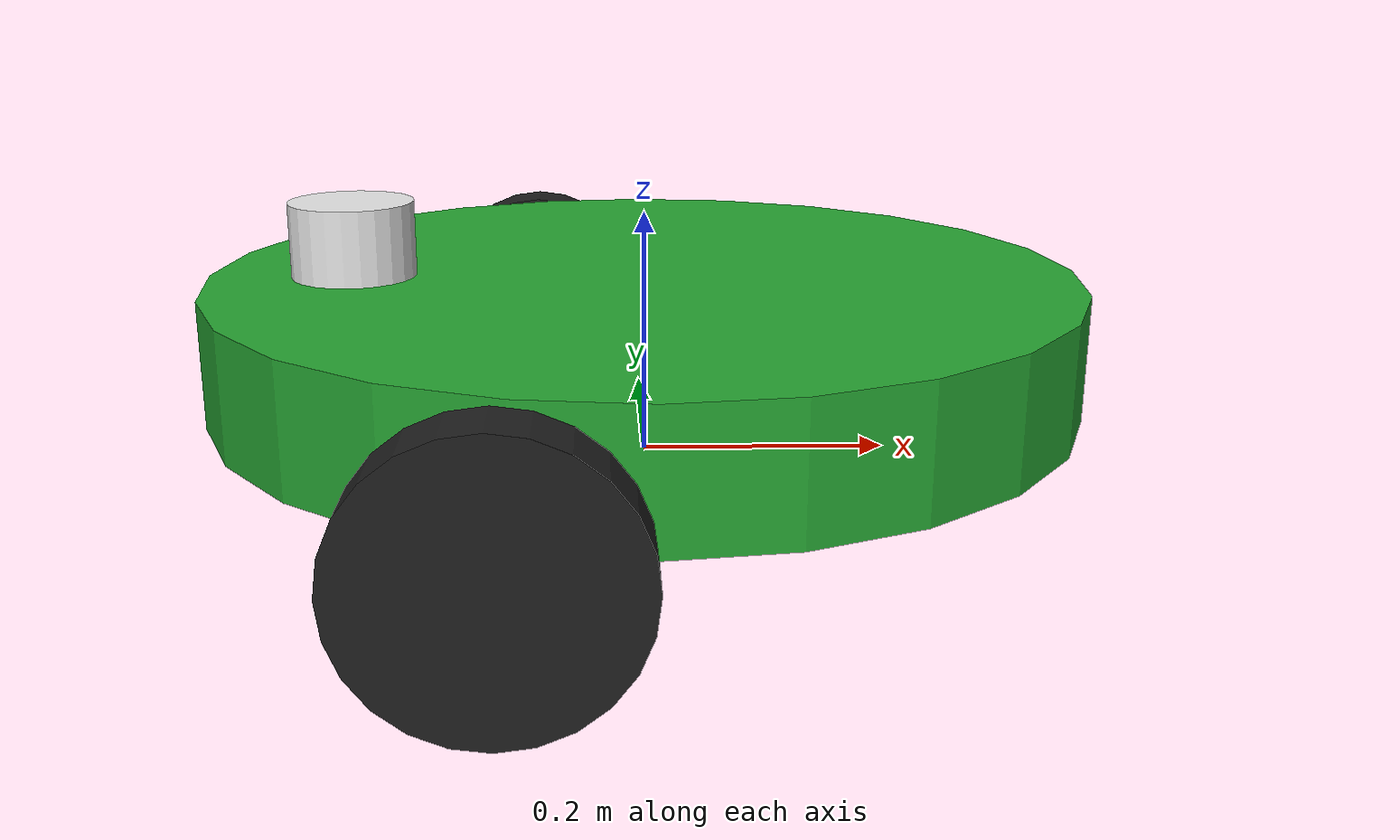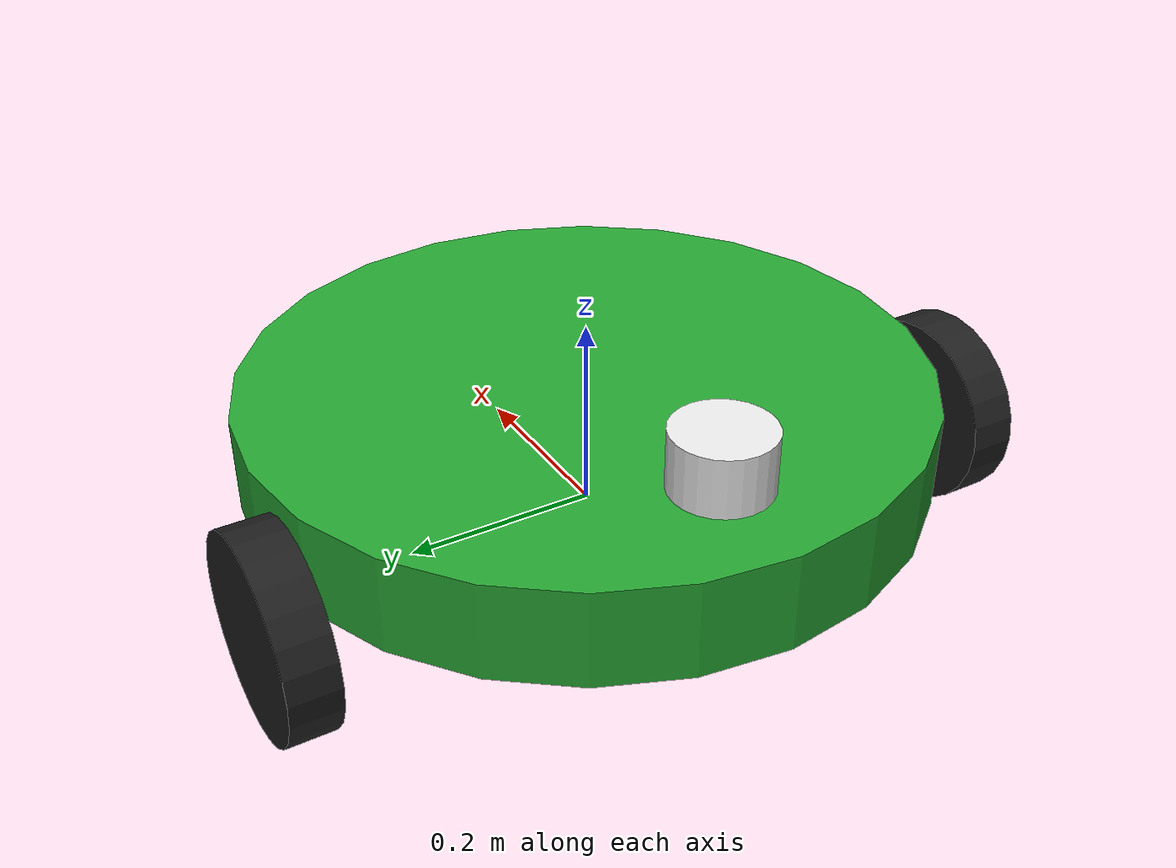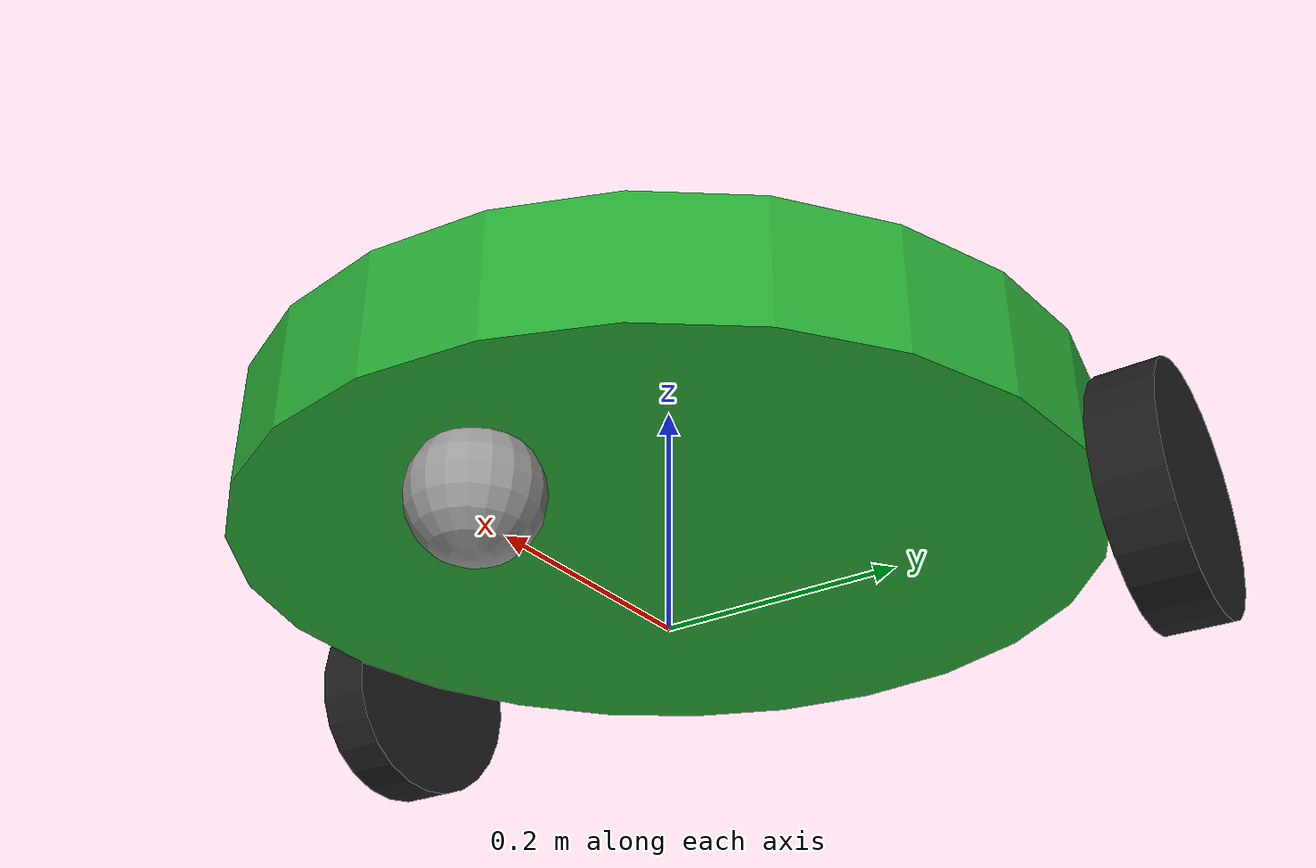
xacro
<?xml version="1.0"?>
<robot xmlns:xacro="http://www.ros.org/wiki/xacro">

    <xacro:property name="base_radius" value="0.35" />
    <xacro:property name="base_length" value="0.1" />
    <xacro:property name="wheel_radius" value="0.1" />
    <xacro:property name="wheel_length" value="0.05" />
    <xacro:property name="wheel_offset" value="0.1" />
    <xacro:property name="lidar_radius" value="0.05" />
    <xacro:property name="lidar_length" value="0.06" />

    <link name="base_footprint" />
    <link name="base_link">
        <visual>
            <geometry>
                <cylinder radius="${base_radius}" length="${base_length}" />
            </geometry>
            <origin xyz="0.0 0.0 ${base_length/2.0}" rpy="0.0 0.0 0.0" />
            <material name="green">
            </material>
        </visual>
        <collision>
            <geometry>
                <cylinder radius="${base_radius}" length="${base_length}" />
            </geometry>
        </collision>
        <xacro:cylinder_inertia m="5.0" r="${base_radius}" l="${base_length}" o_xyz="0 0 2"
            o_rpy="0 0 0" />
    </link>

    <xacro:macro name="wheel_link" params="prefix">
        <link name="${prefix}_wheel_link">
            <visual>
                <geometry>
                    <cylinder radius="${wheel_radius}" length="${wheel_length}" />
                </geometry>
                <origin xyz="0.0 0.0 0.0" rpy="0.0 0.0 0.0" />
                <material name="black" />
            </visual>
            <collision>
                <geometry>
                    <cylinder radius="${wheel_radius}" length="${wheel_length}" />
                </geometry>
                <origin xyz="0 0 0" rpy="0 0 0" />
            </collision>
            <xacro:cylinder_inertia m="1.0" r="${wheel_radius}" l="${wheel_length}" o_xyz="0 0 0"
                o_rpy="${pi /2.0} 0 0" />
        </link>
    </xacro:macro>

      <!-- Transmisión de las ruedas-->
    <xacro:macro name="wheel_transmission" params="prefix">
        <transmission name="${prefix}_wheel_trans">
            <type>transmission_interface/SimpleTransmission</type>
            <joint name="base_${prefix}_wheel_joint">
                <hardwareInterface>hardware_interface/PositionJointInterface</hardwareInterface>
            </joint>
            <actuator name="wheel_motor_${prefix}">
                <mechanicalReduction>5.0</mechanicalReduction>
                <hardwareInterface>hardware_interface/PositionJointInterface</hardwareInterface>
            </actuator>
        </transmission>
    </xacro:macro>

    <xacro:wheel_link prefix="left" />
    <xacro:wheel_link prefix="right" />
    <xacro:wheel_transmission prefix="left" />
    <xacro:wheel_transmission prefix="right" />

    <link name="lidar_link">
        <visual>
            <geometry>
                <cylinder radius="${lidar_radius}" length="${lidar_length}" />
            </geometry>
            <material name="white" />
            <origin xyz="0.0 0.0 0.0" rpy="0.0 0.0 0.0" />
        </visual>
    </link>

    <link name="caster_ball_link">
        <visual>
            <geometry>
                <sphere radius="0.05" />
            </geometry>
            <origin xyz="0 0 0" rpy="0 0 0" />
            <material name="gray">
            </material>
        </visual>
        <collision>
            <geometry>
                <sphere radius="${wheel_radius/2.0}" />
            </geometry>
            <origin xyz="0.0 0.0 0.0" rpy="0.0 0.0 0.0" />
        </collision>
    </link>

    <joint name="base_joint" type="fixed">
        <parent link="base_footprint" />
        <child link="base_link" />
        <origin xyz="0.0 0.0 ${wheel_radius/2.0}" rpy="0.0 0.0 0.0" />

    </joint>

    <joint name="base_right_wheel_joint" type="continuous">
        <parent link="base_link" />
        <child link="right_wheel_link" />
        <origin xyz="${-wheel_offset} ${base_radius+(wheel_length/2.0)} 0.0" rpy="1.57 0.0 0.0" />
        <axis xyz="0.0 0.0 1.0" />
    </joint>

    <joint name="base_left_wheel_joint" type="continuous">
        <parent link="base_link" />
        <child link="left_wheel_link" />
        <origin xyz="${-wheel_offset} ${-(base_radius+(wheel_length/2.0))} 0.0" rpy="1.57 0.0 0.0" />
        <axis xyz="0.0 0.0 1.0" />
    </joint>

    <joint name="base_caster_ball_joint" type="fixed">
        <parent link="base_link" />
        <child link="caster_ball_link" />
        <origin xyz="${base_radius/1.5} 0.0 ${-wheel_radius/3.0}" rpy="0.0 0.0 0.0" />
    </joint>

    <joint name="base_lidar_joint" type="fixed">
        <parent link="base_link" />
        <child link="lidar_link" />
        <origin xyz="${-base_radius/1.5} 0.0 ${base_length+ lidar_length/2.0}" rpy="0.0 0.0 0.0" />
    </joint>

    <sensor name="lidar_sensor" type="ray">
        <parent link="lidar_link" />
        <origin xyz="0.0 0.0 0.0" rpy="0.0 0.0 0.0" />
        <ray>
            <scan>
                <horizontal>
                    <samples>360</samples>
                    <resolution>1.0</resolution>
                    <min_angle>0.0</min_angle>
                    <max_angle>6.28319</max_angle>
                </horizontal>
            </scan>
            <range>
                <min>0.1</min>
                <max>1.0</max>
                <resolution>0.01</resolution>
            </range>
        </ray>
    </sensor>
</robot>
